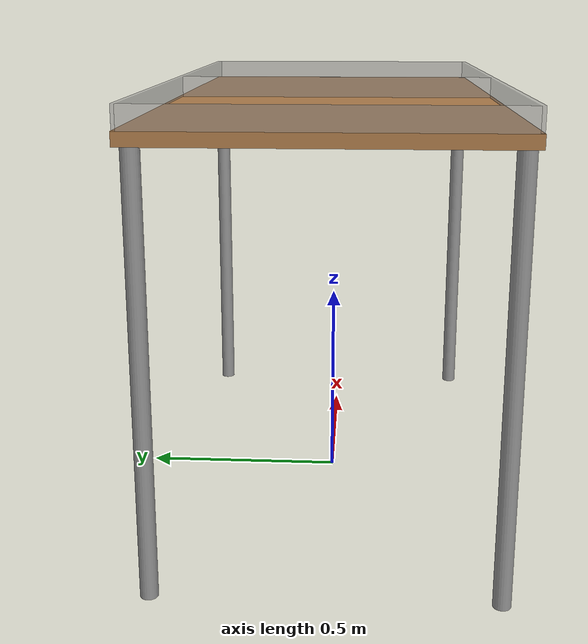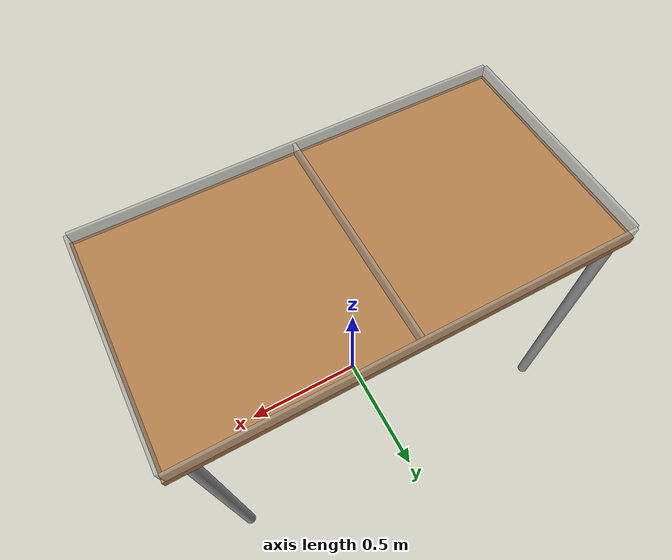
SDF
<?xml version="1.0" ?>
<sdf version="1.5">
  <model name="tablef">
    <static>true</static>
    <link name="link">

      <collision name="surface">
        <pose>0 0 1.0 0 0 0</pose>
        <geometry> <box> <size>1.5 0.8 0.03</size> </box> </geometry>
        <surface> <friction> <ode> <mu>0.6</mu> <mu2>0.6</mu2> </ode> </friction> </surface>
      </collision>
      <visual name="visual1">
        <pose>0 0 1.0 0 0 0</pose>
        <geometry> <box> <size>1.5 0.8 0.03</size> </box> </geometry>
        <material>
	  <script> <uri>file://media/materials/scripts/gazebo.material</uri>
            <name>Gazebo/Wood</name>
          </script>
        </material>
      </visual>

      <collision name="front_left_leg">
        <pose>0.68 0.38 0.5 0 0 0</pose>
        <geometry> <cylinder> <radius>0.02</radius> <length>1.0</length> </cylinder> </geometry>
      </collision>
      <visual name="front_left_leg">
        <pose>0.68 0.38 0.5 0 0 0</pose>
        <geometry> <cylinder> <radius>0.02</radius> <length>1.0</length> </cylinder> </geometry>
        <material>
          <script> <uri>file://media/materials/scripts/gazebo.material</uri>
            <name>Gazebo/Grey</name>
          </script>
        </material>
      </visual>

      <collision name="front_right_leg">
        <pose>0.68 -0.38 0.5 0 0 0</pose>
        <geometry> <cylinder> <radius>0.02</radius> <length>1.0</length> </cylinder> </geometry>
      </collision>
      <visual name="front_right_leg">
        <pose>0.68 -0.38 0.5 0 0 0</pose>
        <geometry> <cylinder> <radius>0.02</radius> <length>1.0</length> </cylinder> </geometry>
        <material>
          <script> <uri>file://media/materials/scripts/gazebo.material</uri>
            <name>Gazebo/Grey</name>
          </script>
        </material>
      </visual>

      <collision name="back_left_leg">
        <pose>-0.68 0.38 0.5 0 0 0</pose>
        <geometry> <cylinder> <radius>0.02</radius> <length>1.0</length> </cylinder> </geometry>
      </collision>
      <visual name="back_left_leg">
        <pose>-0.68 0.38 0.5 0 0 0</pose>
        <geometry> <cylinder> <radius>0.02</radius> <length>1.0</length> </cylinder> </geometry>
        <material>
          <script> <uri>file://media/materials/scripts/gazebo.material</uri>
            <name>Gazebo/Grey</name>
          </script>
        </material>
      </visual>

      <collision name="back_right_leg">
        <pose>-0.68 -0.38 0.5 0 0 0</pose>
        <geometry> <cylinder> <radius>0.02</radius> <length>1.0</length> </cylinder> </geometry>
      </collision>
      <visual name="back_right_leg">
        <pose>-0.68 -0.38 0.5 0 0 0</pose>
        <geometry> <cylinder> <radius>0.02</radius> <length>1.0</length> </cylinder> </geometry>
        <material>
          <script> <uri>file://media/materials/scripts/gazebo.material</uri>
            <name>Gazebo/Grey</name>
          </script>
        </material>
      </visual>

      <collision name="front_fence">
        <pose>0 -0.395 1.04 0 0 0</pose>
        <geometry> <box> <size>1.48 0.01 0.05</size> </box> </geometry>
      </collision>
      <visual name="front_fence">
        <pose>0 -0.395 1.04 0 0 0</pose>
        <geometry> <box> <size>1.48 0.01 0.05</size> </box> </geometry>
        <material>
          <script> <uri>file://media/materials/scripts/gazebo.material</uri>
            <name>Gazebo/GreyTransparent</name>
          </script>
        </material>
      </visual>

      <collision name="back_fence">
        <pose>0 0.395 1.04 0 0 0</pose>
        <geometry> <box> <size>1.48 0.01 0.05</size> </box> </geometry>
      </collision>
      <visual name="back_fence">
        <pose>0 0.395 1.04 0 0 0</pose>
        <geometry> <box> <size>1.48 0.01 0.05</size> </box> </geometry>
        <material>
          <script> <uri>file://media/materials/scripts/gazebo.material</uri>
            <name>Gazebo/GreyTransparent</name>
          </script>
        </material>
      </visual>

      <collision name="left_fence">
        <pose>0.745 0 1.04 0 0 0</pose>
        <geometry> <box> <size>0.01 0.78 0.05</size> </box> </geometry>
      </collision>
      <visual name="left_fence">
        <pose>0.745 0 1.04 0 0 0</pose>
        <geometry> <box> <size>0.01 0.78 0.05</size> </box> </geometry>
        <material>
          <script> <uri>file://media/materials/scripts/gazebo.material</uri>
            <name>Gazebo/GreyTransparent</name>
          </script>
        </material>
      </visual>

      <collision name="right_fence">
        <pose>-0.745 0 1.04 0 0 0</pose>
        <geometry> <box> <size>0.01 0.78 0.05</size> </box> </geometry>
      </collision>
      <visual name="right_fence">
        <pose>-0.745 0 1.04 0 0 0</pose>
        <geometry> <box> <size>0.01 0.78 0.05</size> </box> </geometry>
        <material>
          <script> <uri>file://media/materials/scripts/gazebo.material</uri>
            <name>Gazebo/GreyTransparent</name>
          </script>
        </material>
      </visual>

      <collision name="center_fence">
        <pose>0 0 1.04 0 0 0</pose>
        <geometry> <box> <size>0.01 0.78 0.05</size> </box> </geometry>
      </collision>
      <visual name="center_fence">
        <pose>0 0 1.04 0 0 0</pose>
        <geometry> <box> <size>0.01 0.78 0.05</size> </box> </geometry>
        <material>
          <script> <uri>file://media/materials/scripts/gazebo.material</uri>
            <name>Gazebo/GreyTransparent</name>
          </script>
        </material>
      </visual>

    </link>
  </model>
</sdf>
